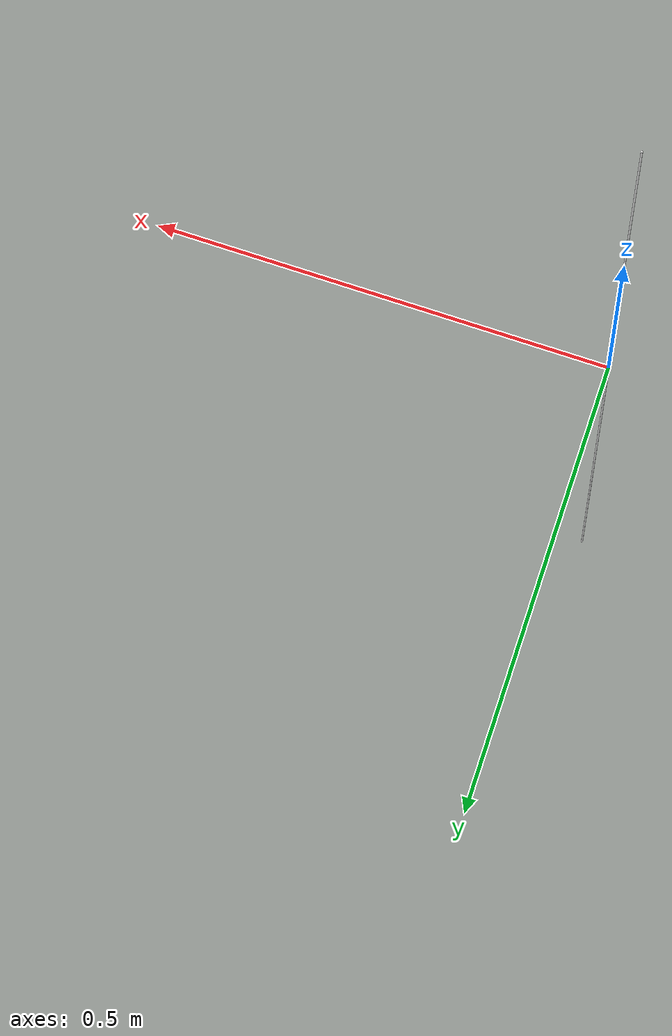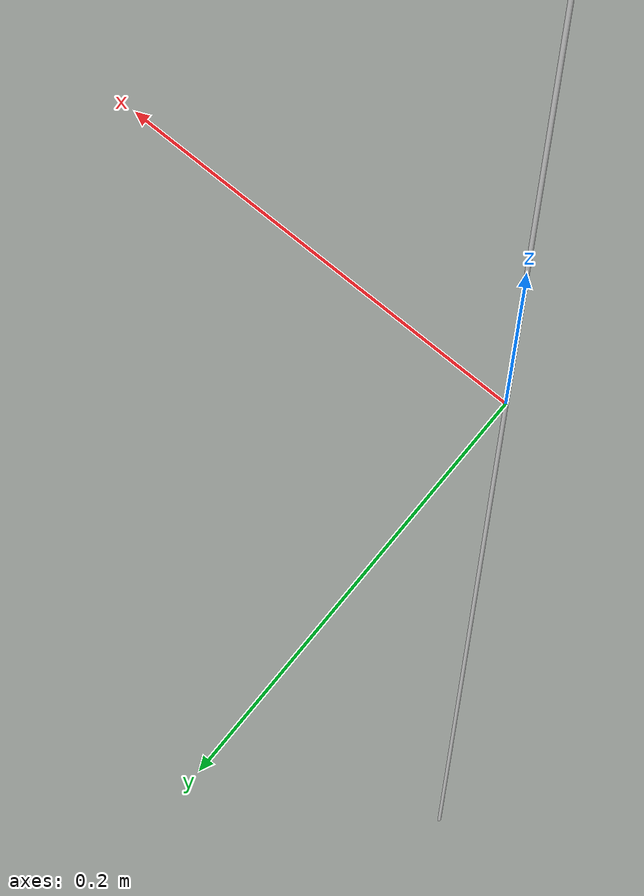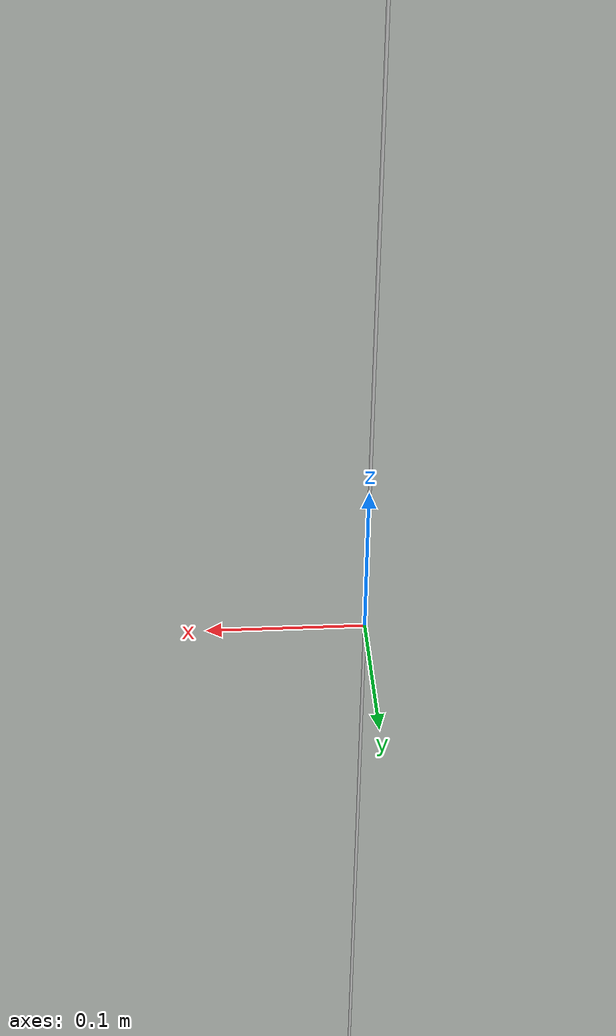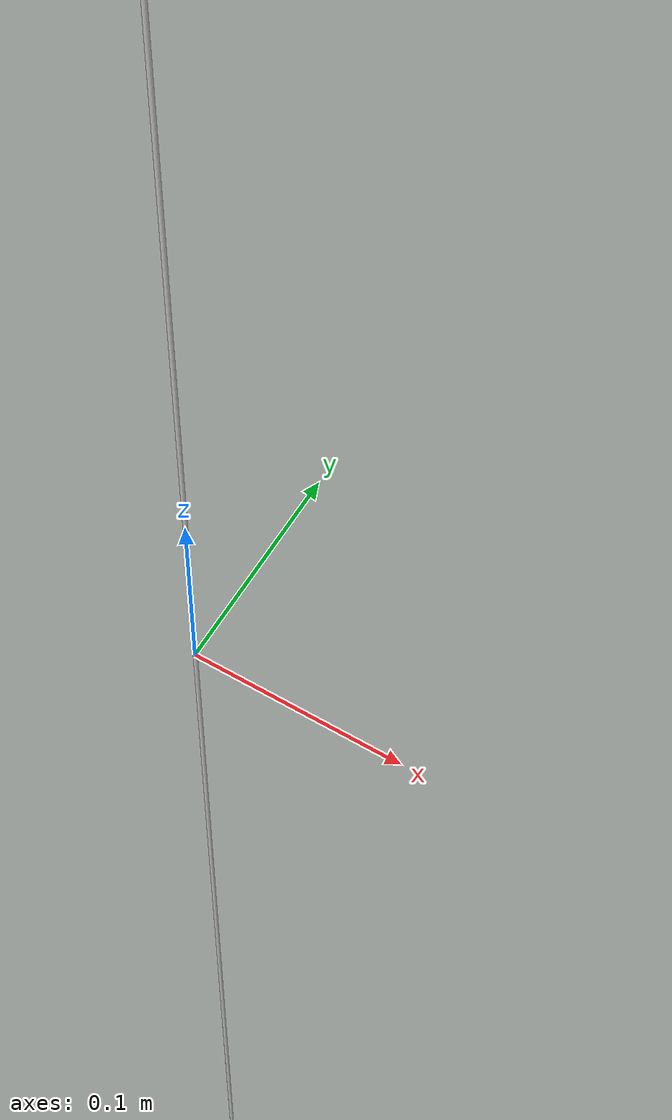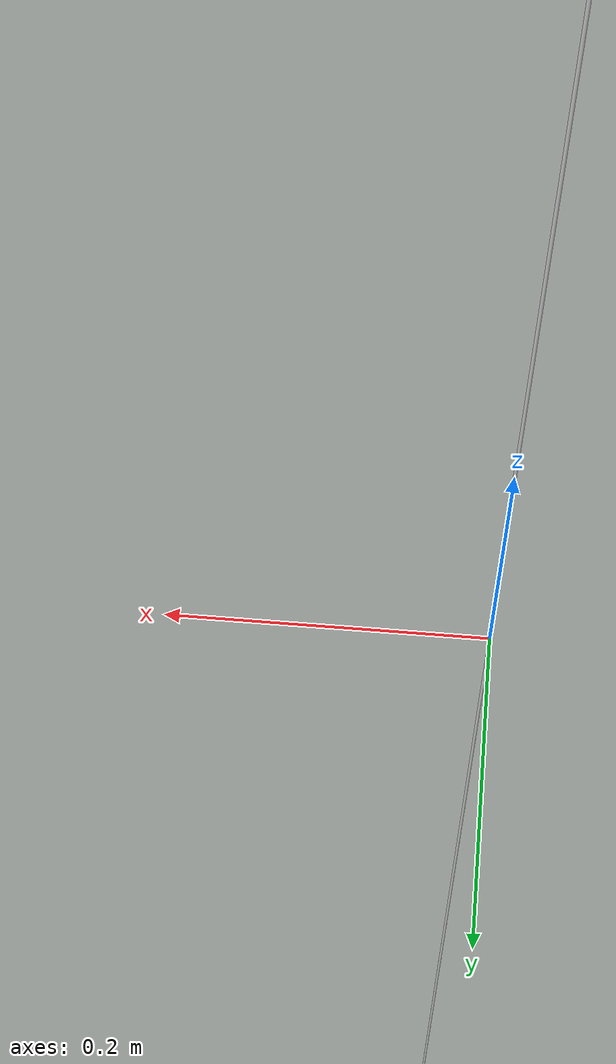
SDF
<?xml version='1.0'?>
<sdf version='1.6'>
  <enable_lockstep>false</enable_lockstep>
  <model name='pendulum_2m'>
    <static>false</static>
    <link name='base_link'>
      <pose>0 0 0 0 0 0</pose>
      <inertial>
        <mass>0.01</mass>
        <inertia>
          <ixx>0.0033</ixx> <!-- 1/12mL^2 -->
          <ixy>0</ixy>
          <ixz>0</ixz>
          <iyy>0.0033</iyy>
          <iyz>0</iyz>
          <izz>0.000000005</izz> <!-- 1/2mr^2 -->
        </inertia>
      </inertial>
      <visual name='base_visual'>
        <geometry>
          <cylinder>
            <radius>0.001</radius>
            <length>2.0</length>
          </cylinder>
        </geometry>
        <material>
          <script>
            <name>Gazebo/White</name>
            <uri>file://media/materials/scripts/gazebo.material</uri>
          </script>
        </material>
      </visual>
      <gravity>1</gravity>
    </link>
  </model>
</sdf>
